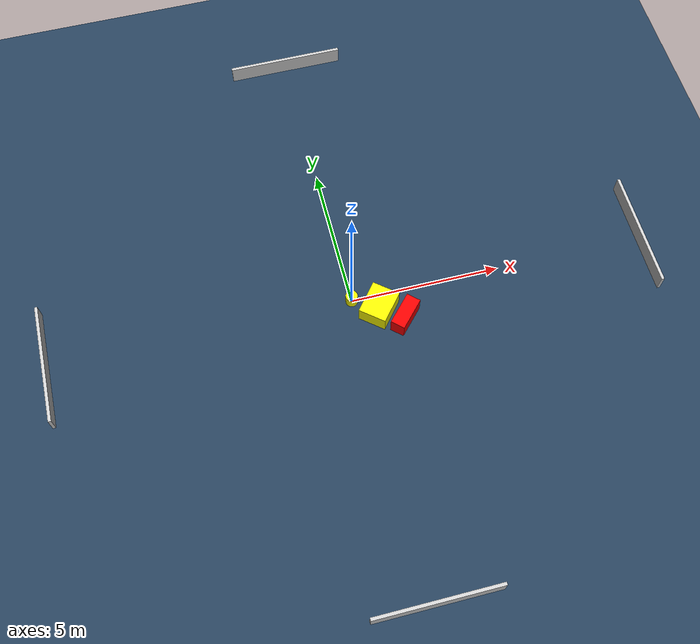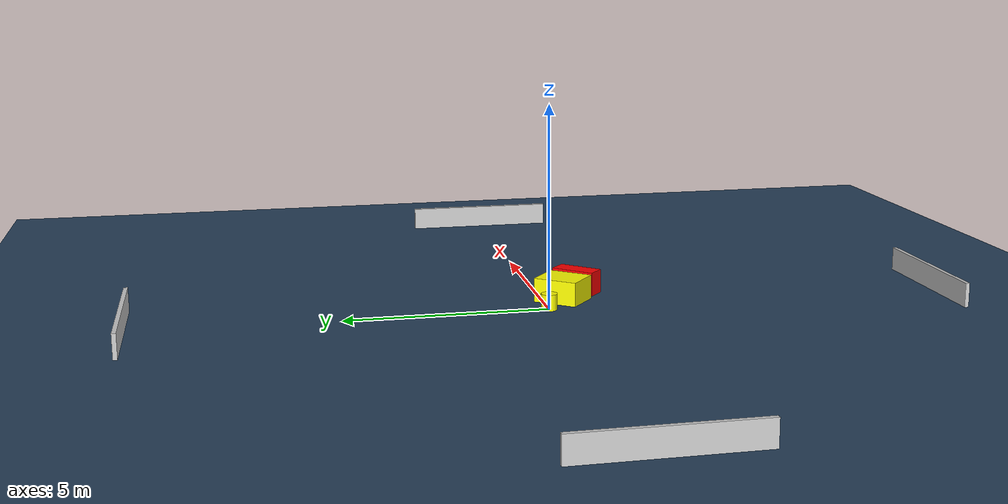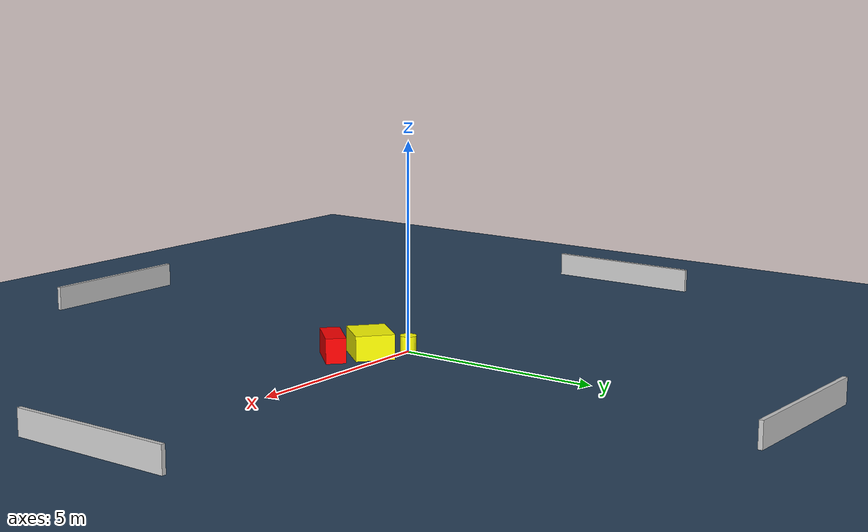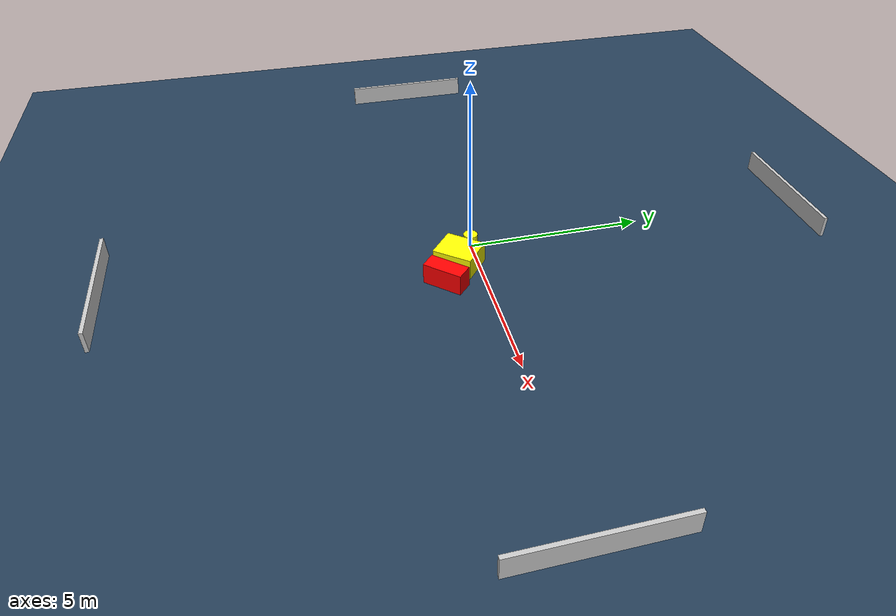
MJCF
<?xml version="1.0" ?>
<mujoco model="generated_environment">
  <option timestep="0.01" integrator="RK4" cone="elliptic"/>
  <default>
    <geom density="1"/>
  </default>
  <asset>
    <texture builtin="gradient" height="3072" name="skybox" rgb1="0.3 0.5 0.7" rgb2="0 0 0" type="skybox" width="512"/>
    <texture builtin="checker" height="300" name="groundplane" rgb1="0.2 0.3 0.4" rgb2="0.1 0.2 0.3" type="2d" width="300"/>
    <material name="groundplane" reflectance="0.2" texrepeat="5 5" texture="groundplane"/>
  </asset>
  <worldbody>
    <light dir="0 0 -1" directional="true" pos="0 0 1.5"/>
    <geom condim="3" friction="0.5 0.005 0.001" material="groundplane" name="floor" pos="0 0 0" size="0 0 0.05" type="plane"/>
    <body name="walls">
      <geom name="wall_1" condim="4" pos="-10.0 0.0 0.3" rgba="0.800000011920929 0.800000011920929 0.800000011920929 1.0" size="0.05 2.0 0.3" type="box"/>
      <geom name="wall_2" condim="4" pos="10.0 0.0 0.3" rgba="0.800000011920929 0.800000011920929 0.800000011920929 1.0" size="0.05 2.0 0.3" type="box"/>
      <geom name="wall_3" condim="4" pos="0.0 -10.0 0.3" rgba="0.800000011920929 0.800000011920929 0.800000011920929 1.0" size="2.0 0.05 0.3" type="box"/>
      <geom name="wall_4" condim="4" pos="0.0 10.0 0.3" rgba="0.800000011920929 0.800000011920929 0.800000011920929 1.0" size="2.0 0.05 0.3" type="box"/>
    </body>
    <body name="robot">
      <joint name="joint_x" type="slide" pos="0 0 0" axis="1 0 0"/>
      <joint name="joint_y" type="slide" pos="0 0 0" axis="0 1 0"/>
      <geom name="robot" type="cylinder" pos="0.0 0.0 0.2" size="0.2 0.2 0.0" mass="5.0" friction="1.0 0.005 0.0001" condim="4" rgba="1.0 1.0 0.0 1.0"/>
    </body>
    <body name="obstacle_1_movable">
      <geom name="obstacle_1_movable" condim="4" pos="0.7857573133283461 -0.5209165380290286 0.3" euler="0 0 320.73971206714765" friction="0.0 0.005 0.001" rgba="1.0 1.0 0.0 1.0" size="0.4682612808047591 0.5622889071994674 0.3" type="box" mass="0.1"/>
      <joint type="free"/>
    </body>
    <body name="obstacle_2_static">
      <geom name="obstacle_2_static" condim="4" pos="1.5285698668125414 -1.0490083079506414 0.3" euler="0 0 317.2468398856104" friction="0.0 0.005 0.001" rgba="1.0 0.0 0.0 1.0" size="0.24009960493144977 0.5663153128318952 0.3" type="box"/>
    </body>
  </worldbody>
  <actuator>
    <motor name="actuator_x" joint="joint_x" gear="1" ctrlrange="-1 1"/>
    <motor name="actuator_y" joint="joint_y" gear="1" ctrlrange="-1 1"/>
  </actuator>
</mujoco>
